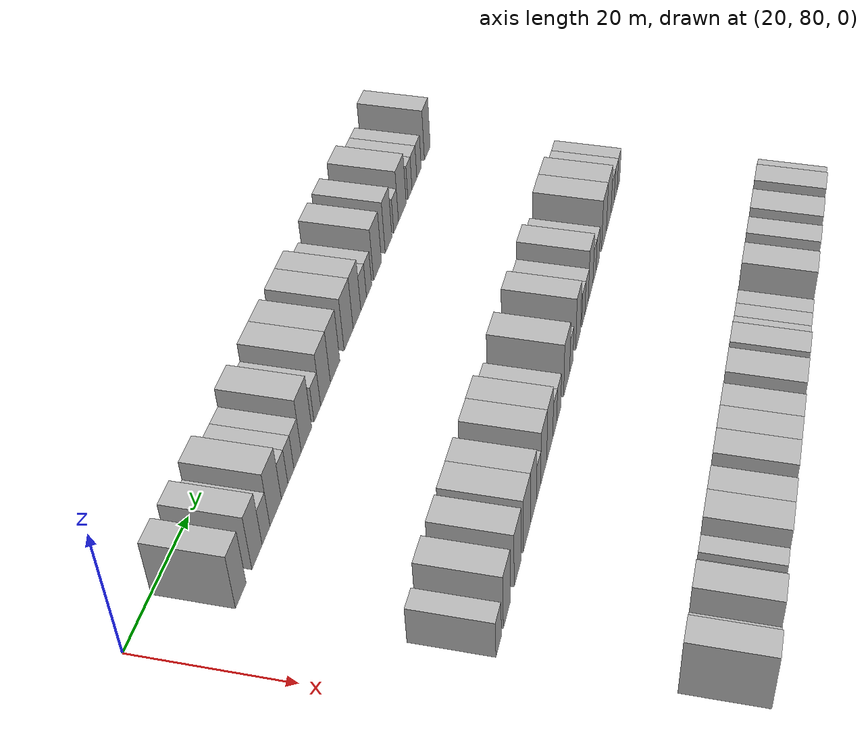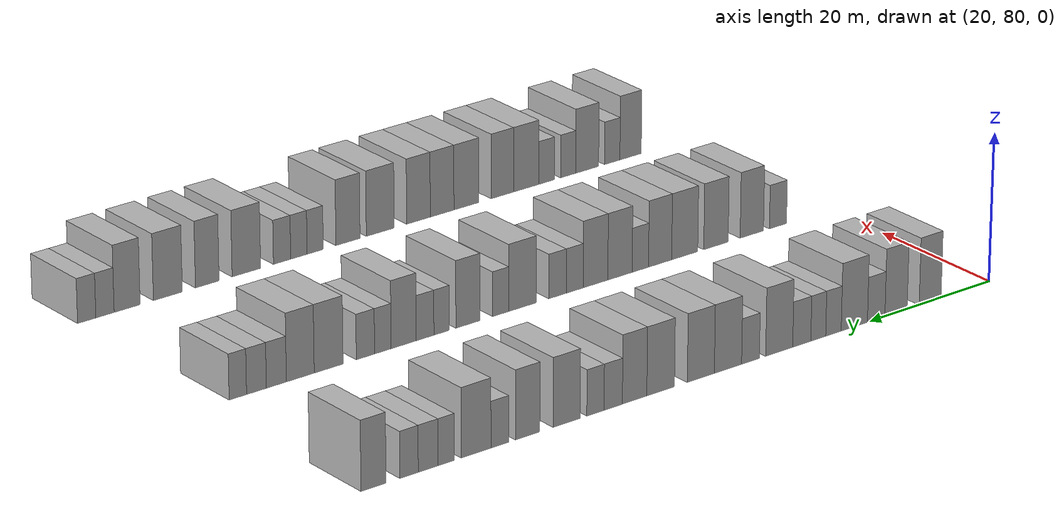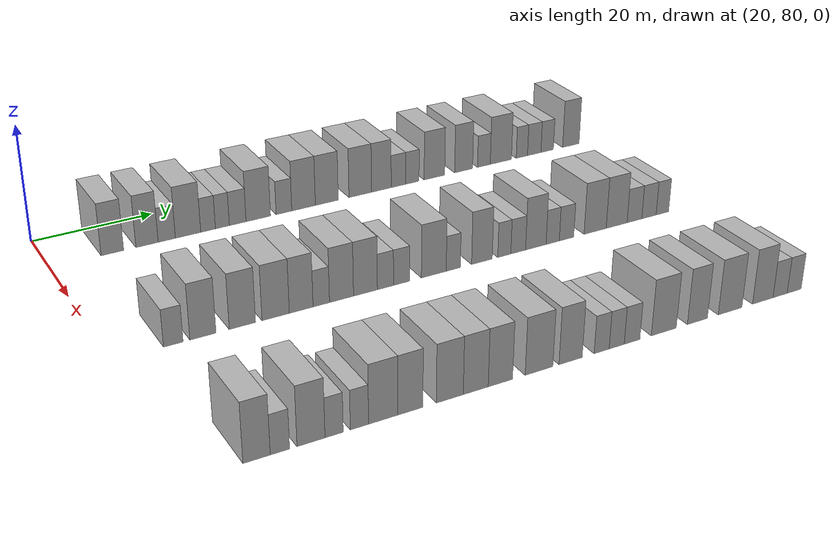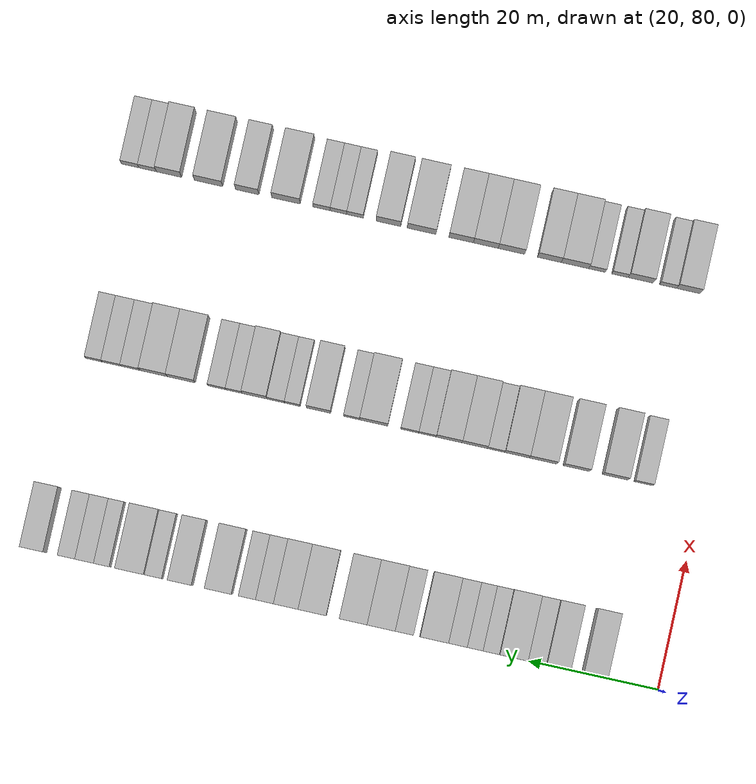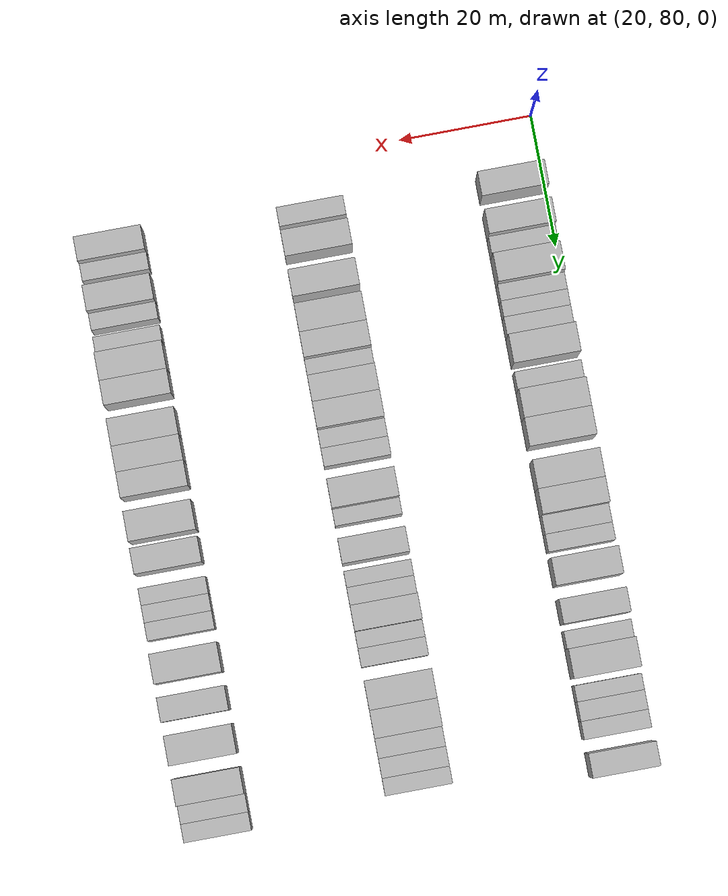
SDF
<sdf version="1.6">
 <world name="default">
  <model name="building_85">
   <static>1</static>
   <pose>25.0000 90.0258 0 0.000000 0.000000 0.000000</pose>
   <link name="link">
    <pose>0 0 4.50 0 0 0</pose>
    <collision name="collision"><geometry><box><size>10.0000 3.6648 9.0000</size></box></geometry></collision>
    <visual name="visual">
     <cast_shadows>0</cast_shadows>
     <geometry><box><size>10.0000 3.6648 9.0000</size></box></geometry>
     <material>
      <script>
       <uri>model://HANNAS_wall/materials/scripts</uri>
       <uri>model://HANNAS_wall/materials/textures</uri>
       <name>vrc/HANNAS_wall</name>
      </script>
     </material>
    </visual>
   </link>
  </model>
  <model name="building_86">
   <static>1</static>
   <pose>25.0000 95.6949 0 0.000000 0.000000 0.000000</pose>
   <link name="link">
    <pose>0 0 4.50 0 0 0</pose>
    <collision name="collision"><geometry><box><size>10.0000 3.6733 9.0000</size></box></geometry></collision>
    <visual name="visual">
     <cast_shadows>0</cast_shadows>
     <geometry><box><size>10.0000 3.6733 9.0000</size></box></geometry>
     <material>
      <script>
       <uri>model://HANNAS_wall/materials/scripts</uri>
       <uri>model://HANNAS_wall/materials/textures</uri>
       <name>vrc/HANNAS_wall</name>
      </script>
     </material>
    </visual>
   </link>
  </model>
  <model name="building_87">
   <static>1</static>
   <pose>25.0000 98.9749 0 0.000000 0.000000 0.000000</pose>
   <link name="link">
    <pose>0 0 3.00 0 0 0</pose>
    <collision name="collision"><geometry><box><size>10.0000 2.8868 6.0000</size></box></geometry></collision>
    <visual name="visual">
     <cast_shadows>0</cast_shadows>
     <geometry><box><size>10.0000 2.8868 6.0000</size></box></geometry>
     <material>
      <script>
       <uri>model://HANNAS_wall/materials/scripts</uri>
       <uri>model://HANNAS_wall/materials/textures</uri>
       <name>vrc/HANNAS_wall</name>
      </script>
     </material>
    </visual>
   </link>
  </model>
  <model name="building_88">
   <static>1</static>
   <pose>25.0000 102.5680 0 0.000000 0.000000 0.000000</pose>
   <link name="link">
    <pose>0 0 4.50 0 0 0</pose>
    <collision name="collision"><geometry><box><size>10.0000 4.2992 9.0000</size></box></geometry></collision>
    <visual name="visual">
     <cast_shadows>0</cast_shadows>
     <geometry><box><size>10.0000 4.2992 9.0000</size></box></geometry>
     <material>
      <script>
       <uri>model://HANNAS_wall/materials/scripts</uri>
       <uri>model://HANNAS_wall/materials/textures</uri>
       <name>vrc/HANNAS_wall</name>
      </script>
     </material>
    </visual>
   </link>
  </model>
  <model name="building_89">
   <static>1</static>
   <pose>25.0000 105.9793 0 0.000000 0.000000 0.000000</pose>
   <link name="link">
    <pose>0 0 3.00 0 0 0</pose>
    <collision name="collision"><geometry><box><size>10.0000 2.5235 6.0000</size></box></geometry></collision>
    <visual name="visual">
     <cast_shadows>0</cast_shadows>
     <geometry><box><size>10.0000 2.5235 6.0000</size></box></geometry>
     <material>
      <script>
       <uri>model://HANNAS_wall/materials/scripts</uri>
       <uri>model://HANNAS_wall/materials/textures</uri>
       <name>vrc/HANNAS_wall</name>
      </script>
     </material>
    </visual>
   </link>
  </model>
  <model name="building_90">
   <static>1</static>
   <pose>25.0000 108.4489 0 0.000000 0.000000 0.000000</pose>
   <link name="link">
    <pose>0 0 3.00 0 0 0</pose>
    <collision name="collision"><geometry><box><size>10.0000 2.4157 6.0000</size></box></geometry></collision>
    <visual name="visual">
     <cast_shadows>0</cast_shadows>
     <geometry><box><size>10.0000 2.4157 6.0000</size></box></geometry>
     <material>
      <script>
       <uri>model://HANNAS_wall/materials/scripts</uri>
       <uri>model://HANNAS_wall/materials/textures</uri>
       <name>vrc/HANNAS_wall</name>
      </script>
     </material>
    </visual>
   </link>
  </model>
  <model name="building_91">
   <static>1</static>
   <pose>25.0000 111.1196 0 0.000000 0.000000 0.000000</pose>
   <link name="link">
    <pose>0 0 3.00 0 0 0</pose>
    <collision name="collision"><geometry><box><size>10.0000 2.9256 6.0000</size></box></geometry></collision>
    <visual name="visual">
     <cast_shadows>0</cast_shadows>
     <geometry><box><size>10.0000 2.9256 6.0000</size></box></geometry>
     <material>
      <script>
       <uri>model://HANNAS_wall/materials/scripts</uri>
       <uri>model://HANNAS_wall/materials/textures</uri>
       <name>vrc/HANNAS_wall</name>
      </script>
     </material>
    </visual>
   </link>
  </model>
  <model name="building_92">
   <static>1</static>
   <pose>25.0000 114.7528 0 0.000000 0.000000 0.000000</pose>
   <link name="link">
    <pose>0 0 4.50 0 0 0</pose>
    <collision name="collision"><geometry><box><size>10.0000 4.3410 9.0000</size></box></geometry></collision>
    <visual name="visual">
     <cast_shadows>0</cast_shadows>
     <geometry><box><size>10.0000 4.3410 9.0000</size></box></geometry>
     <material>
      <script>
       <uri>model://HANNAS_wall/materials/scripts</uri>
       <uri>model://HANNAS_wall/materials/textures</uri>
       <name>vrc/HANNAS_wall</name>
      </script>
     </material>
    </visual>
   </link>
  </model>
  <model name="building_93">
   <static>1</static>
   <pose>25.0000 119.3407 0 0.000000 0.000000 0.000000</pose>
   <link name="link">
    <pose>0 0 3.00 0 0 0</pose>
    <collision name="collision"><geometry><box><size>10.0000 2.8348 6.0000</size></box></geometry></collision>
    <visual name="visual">
     <cast_shadows>0</cast_shadows>
     <geometry><box><size>10.0000 2.8348 6.0000</size></box></geometry>
     <material>
      <script>
       <uri>model://HANNAS_wall/materials/scripts</uri>
       <uri>model://HANNAS_wall/materials/textures</uri>
       <name>vrc/HANNAS_wall</name>
      </script>
     </material>
    </visual>
   </link>
  </model>
  <model name="building_94">
   <static>1</static>
   <pose>25.0000 122.9132 0 0.000000 0.000000 0.000000</pose>
   <link name="link">
    <pose>0 0 4.50 0 0 0</pose>
    <collision name="collision"><geometry><box><size>10.0000 4.3102 9.0000</size></box></geometry></collision>
    <visual name="visual">
     <cast_shadows>0</cast_shadows>
     <geometry><box><size>10.0000 4.3102 9.0000</size></box></geometry>
     <material>
      <script>
       <uri>model://HANNAS_wall/materials/scripts</uri>
       <uri>model://HANNAS_wall/materials/textures</uri>
       <name>vrc/HANNAS_wall</name>
      </script>
     </material>
    </visual>
   </link>
  </model>
  <model name="building_95">
   <static>1</static>
   <pose>25.0000 127.1952 0 0.000000 0.000000 0.000000</pose>
   <link name="link">
    <pose>0 0 4.50 0 0 0</pose>
    <collision name="collision"><geometry><box><size>10.0000 4.2538 9.0000</size></box></geometry></collision>
    <visual name="visual">
     <cast_shadows>0</cast_shadows>
     <geometry><box><size>10.0000 4.2538 9.0000</size></box></geometry>
     <material>
      <script>
       <uri>model://HANNAS_wall/materials/scripts</uri>
       <uri>model://HANNAS_wall/materials/textures</uri>
       <name>vrc/HANNAS_wall</name>
      </script>
     </material>
    </visual>
   </link>
  </model>
  <model name="building_96">
   <static>1</static>
   <pose>25.0000 133.4731 0 0.000000 0.000000 0.000000</pose>
   <link name="link">
    <pose>0 0 4.50 0 0 0</pose>
    <collision name="collision"><geometry><box><size>10.0000 4.3020 9.0000</size></box></geometry></collision>
    <visual name="visual">
     <cast_shadows>0</cast_shadows>
     <geometry><box><size>10.0000 4.3020 9.0000</size></box></geometry>
     <material>
      <script>
       <uri>model://HANNAS_wall/materials/scripts</uri>
       <uri>model://HANNAS_wall/materials/textures</uri>
       <name>vrc/HANNAS_wall</name>
      </script>
     </material>
    </visual>
   </link>
  </model>
  <model name="building_97">
   <static>1</static>
   <pose>25.0000 137.5110 0 0.000000 0.000000 0.000000</pose>
   <link name="link">
    <pose>0 0 4.50 0 0 0</pose>
    <collision name="collision"><geometry><box><size>10.0000 3.7738 9.0000</size></box></geometry></collision>
    <visual name="visual">
     <cast_shadows>0</cast_shadows>
     <geometry><box><size>10.0000 3.7738 9.0000</size></box></geometry>
     <material>
      <script>
       <uri>model://HANNAS_wall/materials/scripts</uri>
       <uri>model://HANNAS_wall/materials/textures</uri>
       <name>vrc/HANNAS_wall</name>
      </script>
     </material>
    </visual>
   </link>
  </model>
  <model name="building_98">
   <static>1</static>
   <pose>25.0000 140.8031 0 0.000000 0.000000 0.000000</pose>
   <link name="link">
    <pose>0 0 3.00 0 0 0</pose>
    <collision name="collision"><geometry><box><size>10.0000 2.8104 6.0000</size></box></geometry></collision>
    <visual name="visual">
     <cast_shadows>0</cast_shadows>
     <geometry><box><size>10.0000 2.8104 6.0000</size></box></geometry>
     <material>
      <script>
       <uri>model://HANNAS_wall/materials/scripts</uri>
       <uri>model://HANNAS_wall/materials/textures</uri>
       <name>vrc/HANNAS_wall</name>
      </script>
     </material>
    </visual>
   </link>
  </model>
  <model name="building_99">
   <static>1</static>
   <pose>25.0000 143.5317 0 0.000000 0.000000 0.000000</pose>
   <link name="link">
    <pose>0 0 3.00 0 0 0</pose>
    <collision name="collision"><geometry><box><size>10.0000 2.6467 6.0000</size></box></geometry></collision>
    <visual name="visual">
     <cast_shadows>0</cast_shadows>
     <geometry><box><size>10.0000 2.6467 6.0000</size></box></geometry>
     <material>
      <script>
       <uri>model://HANNAS_wall/materials/scripts</uri>
       <uri>model://HANNAS_wall/materials/textures</uri>
       <name>vrc/HANNAS_wall</name>
      </script>
     </material>
    </visual>
   </link>
  </model>
  <model name="building_100">
   <static>1</static>
   <pose>25.0000 147.9162 0 0.000000 0.000000 0.000000</pose>
   <link name="link">
    <pose>0 0 4.50 0 0 0</pose>
    <collision name="collision"><geometry><box><size>10.0000 4.1223 9.0000</size></box></geometry></collision>
    <visual name="visual">
     <cast_shadows>0</cast_shadows>
     <geometry><box><size>10.0000 4.1223 9.0000</size></box></geometry>
     <material>
      <script>
       <uri>model://HANNAS_wall/materials/scripts</uri>
       <uri>model://HANNAS_wall/materials/textures</uri>
       <name>vrc/HANNAS_wall</name>
      </script>
     </material>
    </visual>
   </link>
  </model>
  <model name="building_101">
   <static>1</static>
   <pose>25.0000 153.8089 0 0.000000 0.000000 0.000000</pose>
   <link name="link">
    <pose>0 0 4.50 0 0 0</pose>
    <collision name="collision"><geometry><box><size>10.0000 3.6632 9.0000</size></box></geometry></collision>
    <visual name="visual">
     <cast_shadows>0</cast_shadows>
     <geometry><box><size>10.0000 3.6632 9.0000</size></box></geometry>
     <material>
      <script>
       <uri>model://HANNAS_wall/materials/scripts</uri>
       <uri>model://HANNAS_wall/materials/textures</uri>
       <name>vrc/HANNAS_wall</name>
      </script>
     </material>
    </visual>
   </link>
  </model>
  <model name="building_102">
   <static>1</static>
   <pose>25.0000 157.9631 0 0.000000 0.000000 0.000000</pose>
   <link name="link">
    <pose>0 0 3.00 0 0 0</pose>
    <collision name="collision"><geometry><box><size>10.0000 2.6453 6.0000</size></box></geometry></collision>
    <visual name="visual">
     <cast_shadows>0</cast_shadows>
     <geometry><box><size>10.0000 2.6453 6.0000</size></box></geometry>
     <material>
      <script>
       <uri>model://HANNAS_wall/materials/scripts</uri>
       <uri>model://HANNAS_wall/materials/textures</uri>
       <name>vrc/HANNAS_wall</name>
      </script>
     </material>
    </visual>
   </link>
  </model>
  <model name="building_103">
   <static>1</static>
   <pose>25.0000 161.4970 0 0.000000 0.000000 0.000000</pose>
   <link name="link">
    <pose>0 0 4.50 0 0 0</pose>
    <collision name="collision"><geometry><box><size>10.0000 4.4225 9.0000</size></box></geometry></collision>
    <visual name="visual">
     <cast_shadows>0</cast_shadows>
     <geometry><box><size>10.0000 4.4225 9.0000</size></box></geometry>
     <material>
      <script>
       <uri>model://HANNAS_wall/materials/scripts</uri>
       <uri>model://HANNAS_wall/materials/textures</uri>
       <name>vrc/HANNAS_wall</name>
      </script>
     </material>
    </visual>
   </link>
  </model>
  <model name="building_104">
   <static>1</static>
   <pose>25.0000 165.9094 0 0.000000 0.000000 0.000000</pose>
   <link name="link">
    <pose>0 0 3.00 0 0 0</pose>
    <collision name="collision"><geometry><box><size>10.0000 2.4022 6.0000</size></box></geometry></collision>
    <visual name="visual">
     <cast_shadows>0</cast_shadows>
     <geometry><box><size>10.0000 2.4022 6.0000</size></box></geometry>
     <material>
      <script>
       <uri>model://HANNAS_wall/materials/scripts</uri>
       <uri>model://HANNAS_wall/materials/textures</uri>
       <name>vrc/HANNAS_wall</name>
      </script>
     </material>
    </visual>
   </link>
  </model>
  <model name="building_105">
   <static>1</static>
   <pose>25.0000 168.5546 0 0.000000 0.000000 0.000000</pose>
   <link name="link">
    <pose>0 0 3.00 0 0 0</pose>
    <collision name="collision"><geometry><box><size>10.0000 2.8883 6.0000</size></box></geometry></collision>
    <visual name="visual">
     <cast_shadows>0</cast_shadows>
     <geometry><box><size>10.0000 2.8883 6.0000</size></box></geometry>
     <material>
      <script>
       <uri>model://HANNAS_wall/materials/scripts</uri>
       <uri>model://HANNAS_wall/materials/textures</uri>
       <name>vrc/HANNAS_wall</name>
      </script>
     </material>
    </visual>
   </link>
  </model>
  <model name="building_106">
   <static>1</static>
   <pose>25.0000 171.3427 0 0.000000 0.000000 0.000000</pose>
   <link name="link">
    <pose>0 0 3.00 0 0 0</pose>
    <collision name="collision"><geometry><box><size>10.0000 2.6878 6.0000</size></box></geometry></collision>
    <visual name="visual">
     <cast_shadows>0</cast_shadows>
     <geometry><box><size>10.0000 2.6878 6.0000</size></box></geometry>
     <material>
      <script>
       <uri>model://HANNAS_wall/materials/scripts</uri>
       <uri>model://HANNAS_wall/materials/textures</uri>
       <name>vrc/HANNAS_wall</name>
      </script>
     </material>
    </visual>
   </link>
  </model>
  <model name="building_107">
   <static>1</static>
   <pose>25.0000 176.4953 0 0.000000 0.000000 0.000000</pose>
   <link name="link">
    <pose>0 0 4.50 0 0 0</pose>
    <collision name="collision"><geometry><box><size>10.0000 3.6173 9.0000</size></box></geometry></collision>
    <visual name="visual">
     <cast_shadows>0</cast_shadows>
     <geometry><box><size>10.0000 3.6173 9.0000</size></box></geometry>
     <material>
      <script>
       <uri>model://HANNAS_wall/materials/scripts</uri>
       <uri>model://HANNAS_wall/materials/textures</uri>
       <name>vrc/HANNAS_wall</name>
      </script>
     </material>
    </visual>
   </link>
  </model>
  <model name="building_215">
   <static>1</static>
   <pose>55.0000 88.9819 0 0.000000 0.000000 0.000000</pose>
   <link name="link">
    <pose>0 0 3.00 0 0 0</pose>
    <collision name="collision"><geometry><box><size>10.0000 2.8930 6.0000</size></box></geometry></collision>
    <visual name="visual">
     <cast_shadows>0</cast_shadows>
     <geometry><box><size>10.0000 2.8930 6.0000</size></box></geometry>
     <material>
      <script>
       <uri>model://HANNAS_wall/materials/scripts</uri>
       <uri>model://HANNAS_wall/materials/textures</uri>
       <name>vrc/HANNAS_wall</name>
      </script>
     </material>
    </visual>
   </link>
  </model>
  <model name="building_216">
   <static>1</static>
   <pose>55.0000 93.3899 0 0.000000 0.000000 0.000000</pose>
   <link name="link">
    <pose>0 0 4.50 0 0 0</pose>
    <collision name="collision"><geometry><box><size>10.0000 3.9229 9.0000</size></box></geometry></collision>
    <visual name="visual">
     <cast_shadows>0</cast_shadows>
     <geometry><box><size>10.0000 3.9229 9.0000</size></box></geometry>
     <material>
      <script>
       <uri>model://HANNAS_wall/materials/scripts</uri>
       <uri>model://HANNAS_wall/materials/textures</uri>
       <name>vrc/HANNAS_wall</name>
      </script>
     </material>
    </visual>
   </link>
  </model>
  <model name="building_217">
   <static>1</static>
   <pose>55.0000 99.3786 0 0.000000 0.000000 0.000000</pose>
   <link name="link">
    <pose>0 0 4.50 0 0 0</pose>
    <collision name="collision"><geometry><box><size>10.0000 4.0545 9.0000</size></box></geometry></collision>
    <visual name="visual">
     <cast_shadows>0</cast_shadows>
     <geometry><box><size>10.0000 4.0545 9.0000</size></box></geometry>
     <material>
      <script>
       <uri>model://HANNAS_wall/materials/scripts</uri>
       <uri>model://HANNAS_wall/materials/textures</uri>
       <name>vrc/HANNAS_wall</name>
      </script>
     </material>
    </visual>
   </link>
  </model>
  <model name="building_218">
   <static>1</static>
   <pose>55.0000 104.5512 0 0.000000 0.000000 0.000000</pose>
   <link name="link">
    <pose>0 0 4.50 0 0 0</pose>
    <collision name="collision"><geometry><box><size>10.0000 4.2907 9.0000</size></box></geometry></collision>
    <visual name="visual">
     <cast_shadows>0</cast_shadows>
     <geometry><box><size>10.0000 4.2907 9.0000</size></box></geometry>
     <material>
      <script>
       <uri>model://HANNAS_wall/materials/scripts</uri>
       <uri>model://HANNAS_wall/materials/textures</uri>
       <name>vrc/HANNAS_wall</name>
      </script>
     </material>
    </visual>
   </link>
  </model>
  <model name="building_219">
   <static>1</static>
   <pose>55.0000 108.5921 0 0.000000 0.000000 0.000000</pose>
   <link name="link">
    <pose>0 0 4.50 0 0 0</pose>
    <collision name="collision"><geometry><box><size>10.0000 3.7910 9.0000</size></box></geometry></collision>
    <visual name="visual">
     <cast_shadows>0</cast_shadows>
     <geometry><box><size>10.0000 3.7910 9.0000</size></box></geometry>
     <material>
      <script>
       <uri>model://HANNAS_wall/materials/scripts</uri>
       <uri>model://HANNAS_wall/materials/textures</uri>
       <name>vrc/HANNAS_wall</name>
      </script>
     </material>
    </visual>
   </link>
  </model>
  <model name="building_220">
   <static>1</static>
   <pose>55.0000 111.8188 0 0.000000 0.000000 0.000000</pose>
   <link name="link">
    <pose>0 0 3.00 0 0 0</pose>
    <collision name="collision"><geometry><box><size>10.0000 2.6624 6.0000</size></box></geometry></collision>
    <visual name="visual">
     <cast_shadows>0</cast_shadows>
     <geometry><box><size>10.0000 2.6624 6.0000</size></box></geometry>
     <material>
      <script>
       <uri>model://HANNAS_wall/materials/scripts</uri>
       <uri>model://HANNAS_wall/materials/textures</uri>
       <name>vrc/HANNAS_wall</name>
      </script>
     </material>
    </visual>
   </link>
  </model>
  <model name="building_221">
   <static>1</static>
   <pose>55.0000 115.1222 0 0.000000 0.000000 0.000000</pose>
   <link name="link">
    <pose>0 0 4.50 0 0 0</pose>
    <collision name="collision"><geometry><box><size>10.0000 3.9444 9.0000</size></box></geometry></collision>
    <visual name="visual">
     <cast_shadows>0</cast_shadows>
     <geometry><box><size>10.0000 3.9444 9.0000</size></box></geometry>
     <material>
      <script>
       <uri>model://HANNAS_wall/materials/scripts</uri>
       <uri>model://HANNAS_wall/materials/textures</uri>
       <name>vrc/HANNAS_wall</name>
      </script>
     </material>
    </visual>
   </link>
  </model>
  <model name="building_222">
   <static>1</static>
   <pose>55.0000 119.0857 0 0.000000 0.000000 0.000000</pose>
   <link name="link">
    <pose>0 0 4.50 0 0 0</pose>
    <collision name="collision"><geometry><box><size>10.0000 3.9826 9.0000</size></box></geometry></collision>
    <visual name="visual">
     <cast_shadows>0</cast_shadows>
     <geometry><box><size>10.0000 3.9826 9.0000</size></box></geometry>
     <material>
      <script>
       <uri>model://HANNAS_wall/materials/scripts</uri>
       <uri>model://HANNAS_wall/materials/textures</uri>
       <name>vrc/HANNAS_wall</name>
      </script>
     </material>
    </visual>
   </link>
  </model>
  <model name="building_223">
   <static>1</static>
   <pose>55.0000 122.4368 0 0.000000 0.000000 0.000000</pose>
   <link name="link">
    <pose>0 0 3.00 0 0 0</pose>
    <collision name="collision"><geometry><box><size>10.0000 2.7196 6.0000</size></box></geometry></collision>
    <visual name="visual">
     <cast_shadows>0</cast_shadows>
     <geometry><box><size>10.0000 2.7196 6.0000</size></box></geometry>
     <material>
      <script>
       <uri>model://HANNAS_wall/materials/scripts</uri>
       <uri>model://HANNAS_wall/materials/textures</uri>
       <name>vrc/HANNAS_wall</name>
      </script>
     </material>
    </visual>
   </link>
  </model>
  <model name="building_224">
   <static>1</static>
   <pose>55.0000 125.1880 0 0.000000 0.000000 0.000000</pose>
   <link name="link">
    <pose>0 0 3.00 0 0 0</pose>
    <collision name="collision"><geometry><box><size>10.0000 2.7828 6.0000</size></box></geometry></collision>
    <visual name="visual">
     <cast_shadows>0</cast_shadows>
     <geometry><box><size>10.0000 2.7828 6.0000</size></box></geometry>
     <material>
      <script>
       <uri>model://HANNAS_wall/materials/scripts</uri>
       <uri>model://HANNAS_wall/materials/textures</uri>
       <name>vrc/HANNAS_wall</name>
      </script>
     </material>
    </visual>
   </link>
  </model>
  <model name="building_225">
   <static>1</static>
   <pose>55.0000 130.7543 0 0.000000 0.000000 0.000000</pose>
   <link name="link">
    <pose>0 0 4.50 0 0 0</pose>
    <collision name="collision"><geometry><box><size>10.0000 4.3499 9.0000</size></box></geometry></collision>
    <visual name="visual">
     <cast_shadows>0</cast_shadows>
     <geometry><box><size>10.0000 4.3499 9.0000</size></box></geometry>
     <material>
      <script>
       <uri>model://HANNAS_wall/materials/scripts</uri>
       <uri>model://HANNAS_wall/materials/textures</uri>
       <name>vrc/HANNAS_wall</name>
      </script>
     </material>
    </visual>
   </link>
  </model>
  <model name="building_226">
   <static>1</static>
   <pose>55.0000 134.1799 0 0.000000 0.000000 0.000000</pose>
   <link name="link">
    <pose>0 0 3.00 0 0 0</pose>
    <collision name="collision"><geometry><box><size>10.0000 2.5012 6.0000</size></box></geometry></collision>
    <visual name="visual">
     <cast_shadows>0</cast_shadows>
     <geometry><box><size>10.0000 2.5012 6.0000</size></box></geometry>
     <material>
      <script>
       <uri>model://HANNAS_wall/materials/scripts</uri>
       <uri>model://HANNAS_wall/materials/textures</uri>
       <name>vrc/HANNAS_wall</name>
      </script>
     </material>
    </visual>
   </link>
  </model>
  <model name="building_227">
   <static>1</static>
   <pose>55.0000 139.2982 0 0.000000 0.000000 0.000000</pose>
   <link name="link">
    <pose>0 0 4.50 0 0 0</pose>
    <collision name="collision"><geometry><box><size>10.0000 3.7355 9.0000</size></box></geometry></collision>
    <visual name="visual">
     <cast_shadows>0</cast_shadows>
     <geometry><box><size>10.0000 3.7355 9.0000</size></box></geometry>
     <material>
      <script>
       <uri>model://HANNAS_wall/materials/scripts</uri>
       <uri>model://HANNAS_wall/materials/textures</uri>
       <name>vrc/HANNAS_wall</name>
      </script>
     </material>
    </visual>
   </link>
  </model>
  <model name="building_228">
   <static>1</static>
   <pose>55.0000 143.3671 0 0.000000 0.000000 0.000000</pose>
   <link name="link">
    <pose>0 0 3.00 0 0 0</pose>
    <collision name="collision"><geometry><box><size>10.0000 2.4022 6.0000</size></box></geometry></collision>
    <visual name="visual">
     <cast_shadows>0</cast_shadows>
     <geometry><box><size>10.0000 2.4022 6.0000</size></box></geometry>
     <material>
      <script>
       <uri>model://HANNAS_wall/materials/scripts</uri>
       <uri>model://HANNAS_wall/materials/textures</uri>
       <name>vrc/HANNAS_wall</name>
      </script>
     </material>
    </visual>
   </link>
  </model>
  <model name="building_229">
   <static>1</static>
   <pose>55.0000 145.9364 0 0.000000 0.000000 0.000000</pose>
   <link name="link">
    <pose>0 0 3.00 0 0 0</pose>
    <collision name="collision"><geometry><box><size>10.0000 2.7363 6.0000</size></box></geometry></collision>
    <visual name="visual">
     <cast_shadows>0</cast_shadows>
     <geometry><box><size>10.0000 2.7363 6.0000</size></box></geometry>
     <material>
      <script>
       <uri>model://HANNAS_wall/materials/scripts</uri>
       <uri>model://HANNAS_wall/materials/textures</uri>
       <name>vrc/HANNAS_wall</name>
      </script>
     </material>
    </visual>
   </link>
  </model>
  <model name="building_230">
   <static>1</static>
   <pose>55.0000 149.2261 0 0.000000 0.000000 0.000000</pose>
   <link name="link">
    <pose>0 0 4.50 0 0 0</pose>
    <collision name="collision"><geometry><box><size>10.0000 3.8432 9.0000</size></box></geometry></collision>
    <visual name="visual">
     <cast_shadows>0</cast_shadows>
     <geometry><box><size>10.0000 3.8432 9.0000</size></box></geometry>
     <material>
      <script>
       <uri>model://HANNAS_wall/materials/scripts</uri>
       <uri>model://HANNAS_wall/materials/textures</uri>
       <name>vrc/HANNAS_wall</name>
      </script>
     </material>
    </visual>
   </link>
  </model>
  <model name="building_231">
   <static>1</static>
   <pose>55.0000 152.4035 0 0.000000 0.000000 0.000000</pose>
   <link name="link">
    <pose>0 0 3.00 0 0 0</pose>
    <collision name="collision"><geometry><box><size>10.0000 2.5116 6.0000</size></box></geometry></collision>
    <visual name="visual">
     <cast_shadows>0</cast_shadows>
     <geometry><box><size>10.0000 2.5116 6.0000</size></box></geometry>
     <material>
      <script>
       <uri>model://HANNAS_wall/materials/scripts</uri>
       <uri>model://HANNAS_wall/materials/textures</uri>
       <name>vrc/HANNAS_wall</name>
      </script>
     </material>
    </visual>
   </link>
  </model>
  <model name="building_232">
   <static>1</static>
   <pose>55.0000 155.0477 0 0.000000 0.000000 0.000000</pose>
   <link name="link">
    <pose>0 0 3.00 0 0 0</pose>
    <collision name="collision"><geometry><box><size>10.0000 2.7768 6.0000</size></box></geometry></collision>
    <visual name="visual">
     <cast_shadows>0</cast_shadows>
     <geometry><box><size>10.0000 2.7768 6.0000</size></box></geometry>
     <material>
      <script>
       <uri>model://HANNAS_wall/materials/scripts</uri>
       <uri>model://HANNAS_wall/materials/textures</uri>
       <name>vrc/HANNAS_wall</name>
      </script>
     </material>
    </visual>
   </link>
  </model>
  <model name="building_233">
   <static>1</static>
   <pose>55.0000 160.6033 0 0.000000 0.000000 0.000000</pose>
   <link name="link">
    <pose>0 0 4.50 0 0 0</pose>
    <collision name="collision"><geometry><box><size>10.0000 4.3342 9.0000</size></box></geometry></collision>
    <visual name="visual">
     <cast_shadows>0</cast_shadows>
     <geometry><box><size>10.0000 4.3342 9.0000</size></box></geometry>
     <material>
      <script>
       <uri>model://HANNAS_wall/materials/scripts</uri>
       <uri>model://HANNAS_wall/materials/textures</uri>
       <name>vrc/HANNAS_wall</name>
      </script>
     </material>
    </visual>
   </link>
  </model>
  <model name="building_234">
   <static>1</static>
   <pose>55.0000 164.8494 0 0.000000 0.000000 0.000000</pose>
   <link name="link">
    <pose>0 0 4.50 0 0 0</pose>
    <collision name="collision"><geometry><box><size>10.0000 4.1580 9.0000</size></box></geometry></collision>
    <visual name="visual">
     <cast_shadows>0</cast_shadows>
     <geometry><box><size>10.0000 4.1580 9.0000</size></box></geometry>
     <material>
      <script>
       <uri>model://HANNAS_wall/materials/scripts</uri>
       <uri>model://HANNAS_wall/materials/textures</uri>
       <name>vrc/HANNAS_wall</name>
      </script>
     </material>
    </visual>
   </link>
  </model>
  <model name="building_235">
   <static>1</static>
   <pose>55.0000 168.4128 0 0.000000 0.000000 0.000000</pose>
   <link name="link">
    <pose>0 0 3.00 0 0 0</pose>
    <collision name="collision"><geometry><box><size>10.0000 2.9688 6.0000</size></box></geometry></collision>
    <visual name="visual">
     <cast_shadows>0</cast_shadows>
     <geometry><box><size>10.0000 2.9688 6.0000</size></box></geometry>
     <material>
      <script>
       <uri>model://HANNAS_wall/materials/scripts</uri>
       <uri>model://HANNAS_wall/materials/textures</uri>
       <name>vrc/HANNAS_wall</name>
      </script>
     </material>
    </visual>
   </link>
  </model>
  <model name="building_236">
   <static>1</static>
   <pose>55.0000 171.3590 0 0.000000 0.000000 0.000000</pose>
   <link name="link">
    <pose>0 0 3.00 0 0 0</pose>
    <collision name="collision"><geometry><box><size>10.0000 2.9236 6.0000</size></box></geometry></collision>
    <visual name="visual">
     <cast_shadows>0</cast_shadows>
     <geometry><box><size>10.0000 2.9236 6.0000</size></box></geometry>
     <material>
      <script>
       <uri>model://HANNAS_wall/materials/scripts</uri>
       <uri>model://HANNAS_wall/materials/textures</uri>
       <name>vrc/HANNAS_wall</name>
      </script>
     </material>
    </visual>
   </link>
  </model>
  <model name="building_237">
   <static>1</static>
   <pose>55.0000 174.1014 0 0.000000 0.000000 0.000000</pose>
   <link name="link">
    <pose>0 0 3.00 0 0 0</pose>
    <collision name="collision"><geometry><box><size>10.0000 2.5612 6.0000</size></box></geometry></collision>
    <visual name="visual">
     <cast_shadows>0</cast_shadows>
     <geometry><box><size>10.0000 2.5612 6.0000</size></box></geometry>
     <material>
      <script>
       <uri>model://HANNAS_wall/materials/scripts</uri>
       <uri>model://HANNAS_wall/materials/textures</uri>
       <name>vrc/HANNAS_wall</name>
      </script>
     </material>
    </visual>
   </link>
  </model>
  <model name="building_352">
   <static>1</static>
   <pose>85.0000 88.6865 0 0.000000 0.000000 0.000000</pose>
   <link name="link">
    <pose>0 0 4.50 0 0 0</pose>
    <collision name="collision"><geometry><box><size>10.0000 3.6408 9.0000</size></box></geometry></collision>
    <visual name="visual">
     <cast_shadows>0</cast_shadows>
     <geometry><box><size>10.0000 3.6408 9.0000</size></box></geometry>
     <material>
      <script>
       <uri>model://HANNAS_wall/materials/scripts</uri>
       <uri>model://HANNAS_wall/materials/textures</uri>
       <name>vrc/HANNAS_wall</name>
      </script>
     </material>
    </visual>
   </link>
  </model>
  <model name="building_353">
   <static>1</static>
   <pose>85.0000 91.8153 0 0.000000 0.000000 0.000000</pose>
   <link name="link">
    <pose>0 0 3.00 0 0 0</pose>
    <collision name="collision"><geometry><box><size>10.0000 2.6167 6.0000</size></box></geometry></collision>
    <visual name="visual">
     <cast_shadows>0</cast_shadows>
     <geometry><box><size>10.0000 2.6167 6.0000</size></box></geometry>
     <material>
      <script>
       <uri>model://HANNAS_wall/materials/scripts</uri>
       <uri>model://HANNAS_wall/materials/textures</uri>
       <name>vrc/HANNAS_wall</name>
      </script>
     </material>
    </visual>
   </link>
  </model>
  <model name="building_354">
   <static>1</static>
   <pose>85.0000 96.0595 0 0.000000 0.000000 0.000000</pose>
   <link name="link">
    <pose>0 0 4.50 0 0 0</pose>
    <collision name="collision"><geometry><box><size>10.0000 3.8717 9.0000</size></box></geometry></collision>
    <visual name="visual">
     <cast_shadows>0</cast_shadows>
     <geometry><box><size>10.0000 3.8717 9.0000</size></box></geometry>
     <material>
      <script>
       <uri>model://HANNAS_wall/materials/scripts</uri>
       <uri>model://HANNAS_wall/materials/textures</uri>
       <name>vrc/HANNAS_wall</name>
      </script>
     </material>
    </visual>
   </link>
  </model>
  <model name="building_355">
   <static>1</static>
   <pose>85.0000 99.2694 0 0.000000 0.000000 0.000000</pose>
   <link name="link">
    <pose>0 0 3.00 0 0 0</pose>
    <collision name="collision"><geometry><box><size>10.0000 2.5481 6.0000</size></box></geometry></collision>
    <visual name="visual">
     <cast_shadows>0</cast_shadows>
     <geometry><box><size>10.0000 2.5481 6.0000</size></box></geometry>
     <material>
      <script>
       <uri>model://HANNAS_wall/materials/scripts</uri>
       <uri>model://HANNAS_wall/materials/textures</uri>
       <name>vrc/HANNAS_wall</name>
      </script>
     </material>
    </visual>
   </link>
  </model>
  <model name="building_356">
   <static>1</static>
   <pose>85.0000 102.8449 0 0.000000 0.000000 0.000000</pose>
   <link name="link">
    <pose>0 0 3.00 0 0 0</pose>
    <collision name="collision"><geometry><box><size>10.0000 2.6029 6.0000</size></box></geometry></collision>
    <visual name="visual">
     <cast_shadows>0</cast_shadows>
     <geometry><box><size>10.0000 2.6029 6.0000</size></box></geometry>
     <material>
      <script>
       <uri>model://HANNAS_wall/materials/scripts</uri>
       <uri>model://HANNAS_wall/materials/textures</uri>
       <name>vrc/HANNAS_wall</name>
      </script>
     </material>
    </visual>
   </link>
  </model>
  <model name="building_357">
   <static>1</static>
   <pose>85.0000 106.2604 0 0.000000 0.000000 0.000000</pose>
   <link name="link">
    <pose>0 0 4.50 0 0 0</pose>
    <collision name="collision"><geometry><box><size>10.0000 4.2280 9.0000</size></box></geometry></collision>
    <visual name="visual">
     <cast_shadows>0</cast_shadows>
     <geometry><box><size>10.0000 4.2280 9.0000</size></box></geometry>
     <material>
      <script>
       <uri>model://HANNAS_wall/materials/scripts</uri>
       <uri>model://HANNAS_wall/materials/textures</uri>
       <name>vrc/HANNAS_wall</name>
      </script>
     </material>
    </visual>
   </link>
  </model>
  <model name="building_358">
   <static>1</static>
   <pose>85.0000 110.2233 0 0.000000 0.000000 0.000000</pose>
   <link name="link">
    <pose>0 0 4.50 0 0 0</pose>
    <collision name="collision"><geometry><box><size>10.0000 3.6978 9.0000</size></box></geometry></collision>
    <visual name="visual">
     <cast_shadows>0</cast_shadows>
     <geometry><box><size>10.0000 3.6978 9.0000</size></box></geometry>
     <material>
      <script>
       <uri>model://HANNAS_wall/materials/scripts</uri>
       <uri>model://HANNAS_wall/materials/textures</uri>
       <name>vrc/HANNAS_wall</name>
      </script>
     </material>
    </visual>
   </link>
  </model>
  <model name="building_359">
   <static>1</static>
   <pose>85.0000 116.1184 0 0.000000 0.000000 0.000000</pose>
   <link name="link">
    <pose>0 0 4.50 0 0 0</pose>
    <collision name="collision"><geometry><box><size>10.0000 4.0924 9.0000</size></box></geometry></collision>
    <visual name="visual">
     <cast_shadows>0</cast_shadows>
     <geometry><box><size>10.0000 4.0924 9.0000</size></box></geometry>
     <material>
      <script>
       <uri>model://HANNAS_wall/materials/scripts</uri>
       <uri>model://HANNAS_wall/materials/textures</uri>
       <name>vrc/HANNAS_wall</name>
      </script>
     </material>
    </visual>
   </link>
  </model>
  <model name="building_360">
   <static>1</static>
   <pose>85.0000 120.0899 0 0.000000 0.000000 0.000000</pose>
   <link name="link">
    <pose>0 0 4.50 0 0 0</pose>
    <collision name="collision"><geometry><box><size>10.0000 3.8506 9.0000</size></box></geometry></collision>
    <visual name="visual">
     <cast_shadows>0</cast_shadows>
     <geometry><box><size>10.0000 3.8506 9.0000</size></box></geometry>
     <material>
      <script>
       <uri>model://HANNAS_wall/materials/scripts</uri>
       <uri>model://HANNAS_wall/materials/textures</uri>
       <name>vrc/HANNAS_wall</name>
      </script>
     </material>
    </visual>
   </link>
  </model>
  <model name="building_361">
   <static>1</static>
   <pose>85.0000 123.9251 0 0.000000 0.000000 0.000000</pose>
   <link name="link">
    <pose>0 0 4.50 0 0 0</pose>
    <collision name="collision"><geometry><box><size>10.0000 3.8199 9.0000</size></box></geometry></collision>
    <visual name="visual">
     <cast_shadows>0</cast_shadows>
     <geometry><box><size>10.0000 3.8199 9.0000</size></box></geometry>
     <material>
      <script>
       <uri>model://HANNAS_wall/materials/scripts</uri>
       <uri>model://HANNAS_wall/materials/textures</uri>
       <name>vrc/HANNAS_wall</name>
      </script>
     </material>
    </visual>
   </link>
  </model>
  <model name="building_362">
   <static>1</static>
   <pose>85.0000 130.0710 0 0.000000 0.000000 0.000000</pose>
   <link name="link">
    <pose>0 0 4.50 0 0 0</pose>
    <collision name="collision"><geometry><box><size>10.0000 4.4719 9.0000</size></box></geometry></collision>
    <visual name="visual">
     <cast_shadows>0</cast_shadows>
     <geometry><box><size>10.0000 4.4719 9.0000</size></box></geometry>
     <material>
      <script>
       <uri>model://HANNAS_wall/materials/scripts</uri>
       <uri>model://HANNAS_wall/materials/textures</uri>
       <name>vrc/HANNAS_wall</name>
      </script>
     </material>
    </visual>
   </link>
  </model>
  <model name="building_363">
   <static>1</static>
   <pose>85.0000 135.2211 0 0.000000 0.000000 0.000000</pose>
   <link name="link">
    <pose>0 0 4.50 0 0 0</pose>
    <collision name="collision"><geometry><box><size>10.0000 3.8284 9.0000</size></box></geometry></collision>
    <visual name="visual">
     <cast_shadows>0</cast_shadows>
     <geometry><box><size>10.0000 3.8284 9.0000</size></box></geometry>
     <material>
      <script>
       <uri>model://HANNAS_wall/materials/scripts</uri>
       <uri>model://HANNAS_wall/materials/textures</uri>
       <name>vrc/HANNAS_wall</name>
      </script>
     </material>
    </visual>
   </link>
  </model>
  <model name="building_364">
   <static>1</static>
   <pose>85.0000 140.4043 0 0.000000 0.000000 0.000000</pose>
   <link name="link">
    <pose>0 0 3.00 0 0 0</pose>
    <collision name="collision"><geometry><box><size>10.0000 2.5378 6.0000</size></box></geometry></collision>
    <visual name="visual">
     <cast_shadows>0</cast_shadows>
     <geometry><box><size>10.0000 2.5378 6.0000</size></box></geometry>
     <material>
      <script>
       <uri>model://HANNAS_wall/materials/scripts</uri>
       <uri>model://HANNAS_wall/materials/textures</uri>
       <name>vrc/HANNAS_wall</name>
      </script>
     </material>
    </visual>
   </link>
  </model>
  <model name="building_365">
   <static>1</static>
   <pose>85.0000 142.9605 0 0.000000 0.000000 0.000000</pose>
   <link name="link">
    <pose>0 0 3.00 0 0 0</pose>
    <collision name="collision"><geometry><box><size>10.0000 2.5748 6.0000</size></box></geometry></collision>
    <visual name="visual">
     <cast_shadows>0</cast_shadows>
     <geometry><box><size>10.0000 2.5748 6.0000</size></box></geometry>
     <material>
      <script>
       <uri>model://HANNAS_wall/materials/scripts</uri>
       <uri>model://HANNAS_wall/materials/textures</uri>
       <name>vrc/HANNAS_wall</name>
      </script>
     </material>
    </visual>
   </link>
  </model>
  <model name="building_366">
   <static>1</static>
   <pose>85.0000 145.5929 0 0.000000 0.000000 0.000000</pose>
   <link name="link">
    <pose>0 0 3.00 0 0 0</pose>
    <collision name="collision"><geometry><box><size>10.0000 2.6900 6.0000</size></box></geometry></collision>
    <visual name="visual">
     <cast_shadows>0</cast_shadows>
     <geometry><box><size>10.0000 2.6900 6.0000</size></box></geometry>
     <material>
      <script>
       <uri>model://HANNAS_wall/materials/scripts</uri>
       <uri>model://HANNAS_wall/materials/textures</uri>
       <name>vrc/HANNAS_wall</name>
      </script>
     </material>
    </visual>
   </link>
  </model>
  <model name="building_367">
   <static>1</static>
   <pose>85.0000 151.1420 0 0.000000 0.000000 0.000000</pose>
   <link name="link">
    <pose>0 0 4.50 0 0 0</pose>
    <collision name="collision"><geometry><box><size>10.0000 4.4082 9.0000</size></box></geometry></collision>
    <visual name="visual">
     <cast_shadows>0</cast_shadows>
     <geometry><box><size>10.0000 4.4082 9.0000</size></box></geometry>
     <material>
      <script>
       <uri>model://HANNAS_wall/materials/scripts</uri>
       <uri>model://HANNAS_wall/materials/textures</uri>
       <name>vrc/HANNAS_wall</name>
      </script>
     </material>
    </visual>
   </link>
  </model>
  <model name="building_368">
   <static>1</static>
   <pose>85.0000 157.1567 0 0.000000 0.000000 0.000000</pose>
   <link name="link">
    <pose>0 0 4.50 0 0 0</pose>
    <collision name="collision"><geometry><box><size>10.0000 3.6211 9.0000</size></box></geometry></collision>
    <visual name="visual">
     <cast_shadows>0</cast_shadows>
     <geometry><box><size>10.0000 3.6211 9.0000</size></box></geometry>
     <material>
      <script>
       <uri>model://HANNAS_wall/materials/scripts</uri>
       <uri>model://HANNAS_wall/materials/textures</uri>
       <name>vrc/HANNAS_wall</name>
      </script>
     </material>
    </visual>
   </link>
  </model>
  <model name="building_369">
   <static>1</static>
   <pose>85.0000 163.1626 0 0.000000 0.000000 0.000000</pose>
   <link name="link">
    <pose>0 0 4.50 0 0 0</pose>
    <collision name="collision"><geometry><box><size>10.0000 4.3907 9.0000</size></box></geometry></collision>
    <visual name="visual">
     <cast_shadows>0</cast_shadows>
     <geometry><box><size>10.0000 4.3907 9.0000</size></box></geometry>
     <material>
      <script>
       <uri>model://HANNAS_wall/materials/scripts</uri>
       <uri>model://HANNAS_wall/materials/textures</uri>
       <name>vrc/HANNAS_wall</name>
      </script>
     </material>
    </visual>
   </link>
  </model>
  <model name="building_370">
   <static>1</static>
   <pose>85.0000 169.3106 0 0.000000 0.000000 0.000000</pose>
   <link name="link">
    <pose>0 0 4.50 0 0 0</pose>
    <collision name="collision"><geometry><box><size>10.0000 3.9054 9.0000</size></box></geometry></collision>
    <visual name="visual">
     <cast_shadows>0</cast_shadows>
     <geometry><box><size>10.0000 3.9054 9.0000</size></box></geometry>
     <material>
      <script>
       <uri>model://HANNAS_wall/materials/scripts</uri>
       <uri>model://HANNAS_wall/materials/textures</uri>
       <name>vrc/HANNAS_wall</name>
      </script>
     </material>
    </visual>
   </link>
  </model>
  <model name="building_371">
   <static>1</static>
   <pose>85.0000 172.6302 0 0.000000 0.000000 0.000000</pose>
   <link name="link">
    <pose>0 0 3.00 0 0 0</pose>
    <collision name="collision"><geometry><box><size>10.0000 2.7337 6.0000</size></box></geometry></collision>
    <visual name="visual">
     <cast_shadows>0</cast_shadows>
     <geometry><box><size>10.0000 2.7337 6.0000</size></box></geometry>
     <material>
      <script>
       <uri>model://HANNAS_wall/materials/scripts</uri>
       <uri>model://HANNAS_wall/materials/textures</uri>
       <name>vrc/HANNAS_wall</name>
      </script>
     </material>
    </visual>
   </link>
  </model>
  <model name="building_372">
   <static>1</static>
   <pose>85.0000 175.3571 0 0.000000 0.000000 0.000000</pose>
   <link name="link">
    <pose>0 0 3.00 0 0 0</pose>
    <collision name="collision"><geometry><box><size>10.0000 2.7201 6.0000</size></box></geometry></collision>
    <visual name="visual">
     <cast_shadows>0</cast_shadows>
     <geometry><box><size>10.0000 2.7201 6.0000</size></box></geometry>
     <material>
      <script>
       <uri>model://HANNAS_wall/materials/scripts</uri>
       <uri>model://HANNAS_wall/materials/textures</uri>
       <name>vrc/HANNAS_wall</name>
      </script>
     </material>
    </visual>
   </link>
  </model>
 </world>
</sdf>
